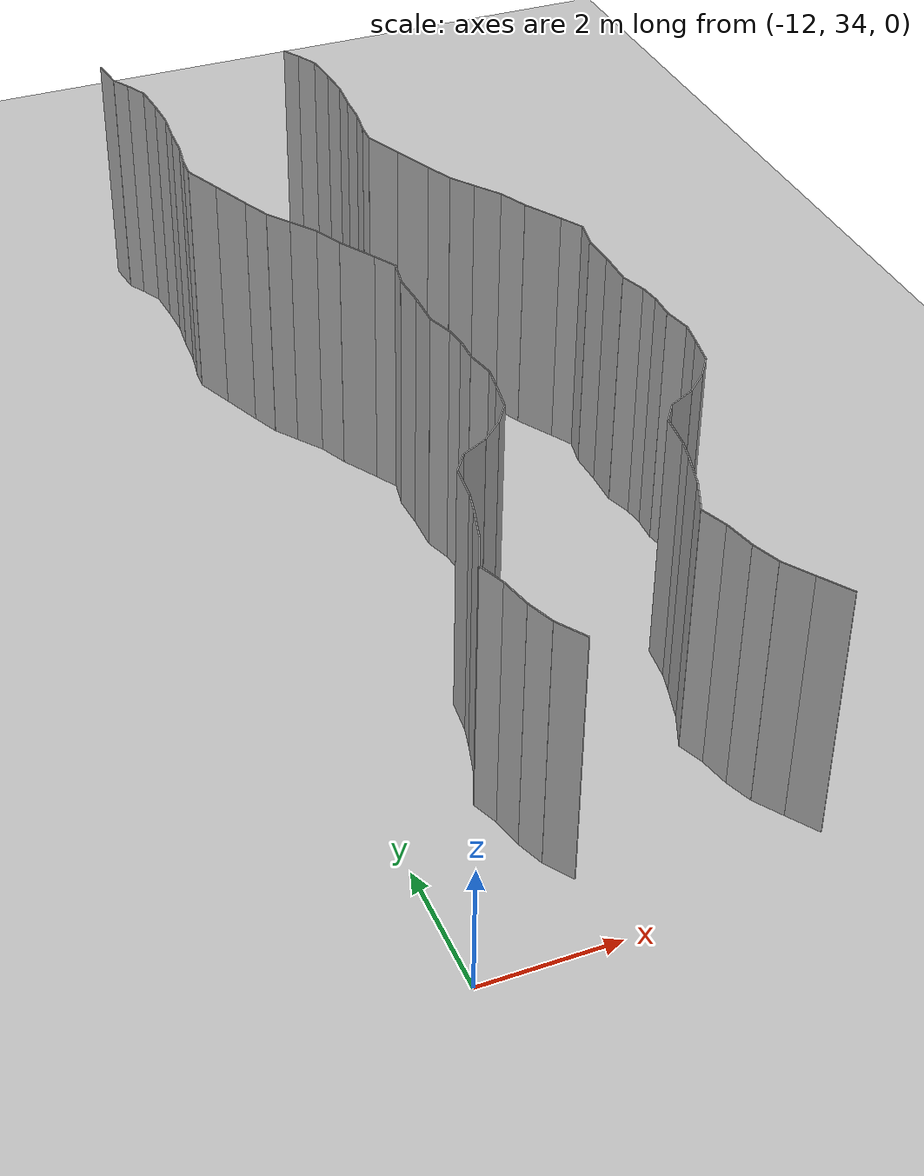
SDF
<sdf version="1.6">
 <world name="default">
  <model name="ground_plane">
   <static>1</static>
   <link name="link">
    <collision name="collision">
     <geometry><plane><normal>0 0 1</normal><size>200 200</size></plane></geometry>
     <surface><friction><ode><mu>100</mu><mu2>50</mu2></ode></friction></surface>
    </collision>
    <visual name="visual">
     <cast_shadows>0</cast_shadows>
     <geometry><plane><normal>0 0 1</normal><size>200 200</size></plane></geometry>
     <material>
      <script><uri>file://media/materials/scripts/gazebo.material</uri><name>Gazebo/Grey</name></script>
     </material>
    </visual>
   </link>
   <pose>0 100 0 0 -0 0</pose>
  </model>
  <model name="wall_149">
   <static>1</static>
   <pose>-6.973516552069897 34.92768637609638 2 0 0 0.5878529912945827</pose>
   <link name="link">
    <collision name="collision"><geometry><box><size>0.02 0.527644451236 4</size></box></geometry></collision>
    <visual name="visual">
     <material>
      <script><name>Gazebo/Grey</name><uri>file://media/materials/scripts/gazebo.material</uri></script>
     </material>
     <geometry><box><size>0.02 0.527644451236 4</size></box></geometry>
    </visual>
   </link>
  </model>
  <model name="wall_150">
   <static>1</static>
   <pose>-10.253642782421261 35.35142472108414 2 0 0 0.5801007630974817</pose>
   <link name="link">
    <collision name="collision"><geometry><box><size>0.02 0.488286177886 4</size></box></geometry></collision>
    <visual name="visual">
     <material>
      <script><name>Gazebo/Grey</name><uri>file://media/materials/scripts/gazebo.material</uri></script>
     </material>
     <geometry><box><size>0.02 0.488286177886 4</size></box></geometry>
    </visual>
   </link>
  </model>
  <model name="wall_151">
   <static>1</static>
   <pose>-7.253642782421261 35.35142472108414 2 0 0 0.5801007630974817</pose>
   <link name="link">
    <collision name="collision"><geometry><box><size>0.02 0.488286177886 4</size></box></geometry></collision>
    <visual name="visual">
     <material>
      <script><name>Gazebo/Grey</name><uri>file://media/materials/scripts/gazebo.material</uri></script>
     </material>
     <geometry><box><size>0.02 0.488286177886 4</size></box></geometry>
    </visual>
   </link>
  </model>
  <model name="wall_152">
   <static>1</static>
   <pose>-10.461663065087262 35.75795263473962 2 0 0 0.3515218257298845</pose>
   <link name="link">
    <collision name="collision"><geometry><box><size>0.02 0.431005731591 4</size></box></geometry></collision>
    <visual name="visual">
     <material>
      <script><name>Gazebo/Grey</name><uri>file://media/materials/scripts/gazebo.material</uri></script>
     </material>
     <geometry><box><size>0.02 0.431005731591 4</size></box></geometry>
    </visual>
   </link>
  </model>
  <model name="wall_153">
   <static>1</static>
   <pose>-7.4616630650872615 35.75795263473962 2 0 0 0.3515218257298845</pose>
   <link name="link">
    <collision name="collision"><geometry><box><size>0.02 0.431005731591 4</size></box></geometry></collision>
    <visual name="visual">
     <material>
      <script><name>Gazebo/Grey</name><uri>file://media/materials/scripts/gazebo.material</uri></script>
     </material>
     <geometry><box><size>0.02 0.431005731591 4</size></box></geometry>
    </visual>
   </link>
  </model>
  <model name="wall_154">
   <static>1</static>
   <pose>-10.586798113768605 36.19405716307982 2 0 0 0.21450962501201826</pose>
   <link name="link">
    <collision name="collision"><geometry><box><size>0.02 0.478526819593 4</size></box></geometry></collision>
    <visual name="visual">
     <material>
      <script><name>Gazebo/Grey</name><uri>file://media/materials/scripts/gazebo.material</uri></script>
     </material>
     <geometry><box><size>0.02 0.478526819593 4</size></box></geometry>
    </visual>
   </link>
  </model>
  <model name="wall_155">
   <static>1</static>
   <pose>-7.586798113768605 36.19405716307982 2 0 0 0.21450962501201826</pose>
   <link name="link">
    <collision name="collision"><geometry><box><size>0.02 0.478526819593 4</size></box></geometry></collision>
    <visual name="visual">
     <material>
      <script><name>Gazebo/Grey</name><uri>file://media/materials/scripts/gazebo.material</uri></script>
     </material>
     <geometry><box><size>0.02 0.478526819593 4</size></box></geometry>
    </visual>
   </link>
  </model>
  <model name="wall_156">
   <static>1</static>
   <pose>-10.712820320702308 36.62304796805498 2 0 0 0.3672158516020859</pose>
   <link name="link">
    <collision name="collision"><geometry><box><size>0.02 0.418310755604 4</size></box></geometry></collision>
    <visual name="visual">
     <material>
      <script><name>Gazebo/Grey</name><uri>file://media/materials/scripts/gazebo.material</uri></script>
     </material>
     <geometry><box><size>0.02 0.418310755604 4</size></box></geometry>
    </visual>
   </link>
  </model>
  <model name="wall_157">
   <static>1</static>
   <pose>-7.712820320702308 36.62304796805498 2 0 0 0.3672158516020859</pose>
   <link name="link">
    <collision name="collision"><geometry><box><size>0.02 0.418310755604 4</size></box></geometry></collision>
    <visual name="visual">
     <material>
      <script><name>Gazebo/Grey</name><uri>file://media/materials/scripts/gazebo.material</uri></script>
     </material>
     <geometry><box><size>0.02 0.418310755604 4</size></box></geometry>
    </visual>
   </link>
  </model>
  <model name="wall_158">
   <static>1</static>
   <pose>-10.67666074626445 37.078962351962005 2 0 0 -0.40333593144940244</pose>
   <link name="link">
    <collision name="collision"><geometry><box><size>0.02 0.566896132554 4</size></box></geometry></collision>
    <visual name="visual">
     <material>
      <script><name>Gazebo/Grey</name><uri>file://media/materials/scripts/gazebo.material</uri></script>
     </material>
     <geometry><box><size>0.02 0.566896132554 4</size></box></geometry>
    </visual>
   </link>
  </model>
  <model name="wall_159">
   <static>1</static>
   <pose>-7.676660746264449 37.078962351962005 2 0 0 -0.40333593144940244</pose>
   <link name="link">
    <collision name="collision"><geometry><box><size>0.02 0.566896132554 4</size></box></geometry></collision>
    <visual name="visual">
     <material>
      <script><name>Gazebo/Grey</name><uri>file://media/materials/scripts/gazebo.material</uri></script>
     </material>
     <geometry><box><size>0.02 0.566896132554 4</size></box></geometry>
    </visual>
   </link>
  </model>
  <model name="wall_160">
   <static>1</static>
   <pose>-10.491217744832854 37.60129481774817 2 0 0 -0.2763254004838807</pose>
   <link name="link">
    <collision name="collision"><geometry><box><size>0.02 0.543891173695 4</size></box></geometry></collision>
    <visual name="visual">
     <material>
      <script><name>Gazebo/Grey</name><uri>file://media/materials/scripts/gazebo.material</uri></script>
     </material>
     <geometry><box><size>0.02 0.543891173695 4</size></box></geometry>
    </visual>
   </link>
  </model>
  <model name="wall_161">
   <static>1</static>
   <pose>-7.491217744832854 37.60129481774817 2 0 0 -0.2763254004838807</pose>
   <link name="link">
    <collision name="collision"><geometry><box><size>0.02 0.543891173695 4</size></box></geometry></collision>
    <visual name="visual">
     <material>
      <script><name>Gazebo/Grey</name><uri>file://media/materials/scripts/gazebo.material</uri></script>
     </material>
     <geometry><box><size>0.02 0.543891173695 4</size></box></geometry>
    </visual>
   </link>
  </model>
  <model name="wall_162">
   <static>1</static>
   <pose>-10.379246231117214 38.01761766473765 2 0 0 -0.23952768896015864</pose>
   <link name="link">
    <collision name="collision"><geometry><box><size>0.02 0.318479891964 4</size></box></geometry></collision>
    <visual name="visual">
     <material>
      <script><name>Gazebo/Grey</name><uri>file://media/materials/scripts/gazebo.material</uri></script>
     </material>
     <geometry><box><size>0.02 0.318479891964 4</size></box></geometry>
    </visual>
   </link>
  </model>
  <model name="wall_163">
   <static>1</static>
   <pose>-7.3792462311172144 38.01761766473765 2 0 0 -0.23952768896015864</pose>
   <link name="link">
    <collision name="collision"><geometry><box><size>0.02 0.318479891964 4</size></box></geometry></collision>
    <visual name="visual">
     <material>
      <script><name>Gazebo/Grey</name><uri>file://media/materials/scripts/gazebo.material</uri></script>
     </material>
     <geometry><box><size>0.02 0.318479891964 4</size></box></geometry>
    </visual>
   </link>
  </model>
  <model name="wall_164">
   <static>1</static>
   <pose>-10.314433425523095 38.43618425653294 2 0 0 -0.10209504109401685</pose>
   <link name="link">
    <collision name="collision"><geometry><box><size>0.02 0.530508297854 4</size></box></geometry></collision>
    <visual name="visual">
     <material>
      <script><name>Gazebo/Grey</name><uri>file://media/materials/scripts/gazebo.material</uri></script>
     </material>
     <geometry><box><size>0.02 0.530508297854 4</size></box></geometry>
    </visual>
   </link>
  </model>
  <model name="wall_165">
   <static>1</static>
   <pose>-7.314433425523095 38.43618425653294 2 0 0 -0.10209504109401685</pose>
   <link name="link">
    <collision name="collision"><geometry><box><size>0.02 0.530508297854 4</size></box></geometry></collision>
    <visual name="visual">
     <material>
      <script><name>Gazebo/Grey</name><uri>file://media/materials/scripts/gazebo.material</uri></script>
     </material>
     <geometry><box><size>0.02 0.530508297854 4</size></box></geometry>
    </visual>
   </link>
  </model>
  <model name="wall_166">
   <static>1</static>
   <pose>-10.183954145807355 38.84725883644627 2 0 0 -0.6125656028762286</pose>
   <link name="link">
    <collision name="collision"><geometry><box><size>0.02 0.35982901579 4</size></box></geometry></collision>
    <visual name="visual">
     <material>
      <script><name>Gazebo/Grey</name><uri>file://media/materials/scripts/gazebo.material</uri></script>
     </material>
     <geometry><box><size>0.02 0.35982901579 4</size></box></geometry>
    </visual>
   </link>
  </model>
  <model name="wall_167">
   <static>1</static>
   <pose>-7.1839541458073555 38.84725883644627 2 0 0 -0.6125656028762286</pose>
   <link name="link">
    <collision name="collision"><geometry><box><size>0.02 0.35982901579 4</size></box></geometry></collision>
    <visual name="visual">
     <material>
      <script><name>Gazebo/Grey</name><uri>file://media/materials/scripts/gazebo.material</uri></script>
     </material>
     <geometry><box><size>0.02 0.35982901579 4</size></box></geometry>
    </visual>
   </link>
  </model>
  <model name="wall_168">
   <static>1</static>
   <pose>-9.884649813034999 39.09232711958715 2 0 0 -1.1074058925830867</pose>
   <link name="link">
    <collision name="collision"><geometry><box><size>0.02 0.437898112297 4</size></box></geometry></collision>
    <visual name="visual">
     <material>
      <script><name>Gazebo/Grey</name><uri>file://media/materials/scripts/gazebo.material</uri></script>
     </material>
     <geometry><box><size>0.02 0.437898112297 4</size></box></geometry>
    </visual>
   </link>
  </model>
  <model name="wall_169">
   <static>1</static>
   <pose>-6.884649813034999 39.09232711958715 2 0 0 -1.1074058925830867</pose>
   <link name="link">
    <collision name="collision"><geometry><box><size>0.02 0.437898112297 4</size></box></geometry></collision>
    <visual name="visual">
     <material>
      <script><name>Gazebo/Grey</name><uri>file://media/materials/scripts/gazebo.material</uri></script>
     </material>
     <geometry><box><size>0.02 0.437898112297 4</size></box></geometry>
    </visual>
   </link>
  </model>
  <model name="wall_170">
   <static>1</static>
   <pose>-9.532824115158853 39.333615893489934 2 0 0 -0.8272736744001842</pose>
   <link name="link">
    <collision name="collision"><geometry><box><size>0.02 0.423771030139 4</size></box></geometry></collision>
    <visual name="visual">
     <material>
      <script><name>Gazebo/Grey</name><uri>file://media/materials/scripts/gazebo.material</uri></script>
     </material>
     <geometry><box><size>0.02 0.423771030139 4</size></box></geometry>
    </visual>
   </link>
  </model>
  <model name="wall_171">
   <static>1</static>
   <pose>-6.532824115158853 39.333615893489934 2 0 0 -0.8272736744001842</pose>
   <link name="link">
    <collision name="collision"><geometry><box><size>0.02 0.423771030139 4</size></box></geometry></collision>
    <visual name="visual">
     <material>
      <script><name>Gazebo/Grey</name><uri>file://media/materials/scripts/gazebo.material</uri></script>
     </material>
     <geometry><box><size>0.02 0.423771030139 4</size></box></geometry>
    </visual>
   </link>
  </model>
  <model name="wall_172">
   <static>1</static>
   <pose>-9.261114124329769 39.6416728451849 2 0 0 -0.6127576447596543</pose>
   <link name="link">
    <collision name="collision"><geometry><box><size>0.02 0.402498035678 4</size></box></geometry></collision>
    <visual name="visual">
     <material>
      <script><name>Gazebo/Grey</name><uri>file://media/materials/scripts/gazebo.material</uri></script>
     </material>
     <geometry><box><size>0.02 0.402498035678 4</size></box></geometry>
    </visual>
   </link>
  </model>
  <model name="wall_173">
   <static>1</static>
   <pose>-6.261114124329769 39.6416728451849 2 0 0 -0.6127576447596543</pose>
   <link name="link">
    <collision name="collision"><geometry><box><size>0.02 0.402498035678 4</size></box></geometry></collision>
    <visual name="visual">
     <material>
      <script><name>Gazebo/Grey</name><uri>file://media/materials/scripts/gazebo.material</uri></script>
     </material>
     <geometry><box><size>0.02 0.402498035678 4</size></box></geometry>
    </visual>
   </link>
  </model>
  <model name="wall_174">
   <static>1</static>
   <pose>-9.106679390160627 40.02811147614148 2 0 0 -0.1727014560894286</pose>
   <link name="link">
    <collision name="collision"><geometry><box><size>0.02 0.450306348265 4</size></box></geometry></collision>
    <visual name="visual">
     <material>
      <script><name>Gazebo/Grey</name><uri>file://media/materials/scripts/gazebo.material</uri></script>
     </material>
     <geometry><box><size>0.02 0.450306348265 4</size></box></geometry>
    </visual>
   </link>
  </model>
  <model name="wall_175">
   <static>1</static>
   <pose>-6.106679390160627 40.02811147614148 2 0 0 -0.1727014560894286</pose>
   <link name="link">
    <collision name="collision"><geometry><box><size>0.02 0.450306348265 4</size></box></geometry></collision>
    <visual name="visual">
     <material>
      <script><name>Gazebo/Grey</name><uri>file://media/materials/scripts/gazebo.material</uri></script>
     </material>
     <geometry><box><size>0.02 0.450306348265 4</size></box></geometry>
    </visual>
   </link>
  </model>
  <model name="wall_176">
   <static>1</static>
   <pose>-9.03948695620688 40.43361459537852 2 0 0 -0.15392390376779727</pose>
   <link name="link">
    <collision name="collision"><geometry><box><size>0.02 0.371794279395 4</size></box></geometry></collision>
    <visual name="visual">
     <material>
      <script><name>Gazebo/Grey</name><uri>file://media/materials/scripts/gazebo.material</uri></script>
     </material>
     <geometry><box><size>0.02 0.371794279395 4</size></box></geometry>
    </visual>
   </link>
  </model>
  <model name="wall_177">
   <static>1</static>
   <pose>-6.039486956206879 40.43361459537852 2 0 0 -0.15392390376779727</pose>
   <link name="link">
    <collision name="collision"><geometry><box><size>0.02 0.371794279395 4</size></box></geometry></collision>
    <visual name="visual">
     <material>
      <script><name>Gazebo/Grey</name><uri>file://media/materials/scripts/gazebo.material</uri></script>
     </material>
     <geometry><box><size>0.02 0.371794279395 4</size></box></geometry>
    </visual>
   </link>
  </model>
  <model name="wall_178">
   <static>1</static>
   <pose>-9.054822630717934 40.832484646258166 2 0 0 0.20097992937342501</pose>
   <link name="link">
    <collision name="collision"><geometry><box><size>0.02 0.439181613833 4</size></box></geometry></collision>
    <visual name="visual">
     <material>
      <script><name>Gazebo/Grey</name><uri>file://media/materials/scripts/gazebo.material</uri></script>
     </material>
     <geometry><box><size>0.02 0.439181613833 4</size></box></geometry>
    </visual>
   </link>
  </model>
  <model name="wall_179">
   <static>1</static>
   <pose>-6.0548226307179345 40.832484646258166 2 0 0 0.20097992937342501</pose>
   <link name="link">
    <collision name="collision"><geometry><box><size>0.02 0.439181613833 4</size></box></geometry></collision>
    <visual name="visual">
     <material>
      <script><name>Gazebo/Grey</name><uri>file://media/materials/scripts/gazebo.material</uri></script>
     </material>
     <geometry><box><size>0.02 0.439181613833 4</size></box></geometry>
    </visual>
   </link>
  </model>
  <model name="wall_180">
   <static>1</static>
   <pose>-9.092775992512946 41.24075153438704 2 0 0 -0.03045970070351771</pose>
   <link name="link">
    <collision name="collision"><geometry><box><size>0.02 0.386371484895 4</size></box></geometry></collision>
    <visual name="visual">
     <material>
      <script><name>Gazebo/Grey</name><uri>file://media/materials/scripts/gazebo.material</uri></script>
     </material>
     <geometry><box><size>0.02 0.386371484895 4</size></box></geometry>
    </visual>
   </link>
  </model>
  <model name="wall_181">
   <static>1</static>
   <pose>-6.092775992512946 41.24075153438704 2 0 0 -0.03045970070351771</pose>
   <link name="link">
    <collision name="collision"><geometry><box><size>0.02 0.386371484895 4</size></box></geometry></collision>
    <visual name="visual">
     <material>
      <script><name>Gazebo/Grey</name><uri>file://media/materials/scripts/gazebo.material</uri></script>
     </material>
     <geometry><box><size>0.02 0.386371484895 4</size></box></geometry>
    </visual>
   </link>
  </model>
  <model name="wall_182">
   <static>1</static>
   <pose>-9.106173967271706 41.58609570773712 2 0 0 0.12597430248278776</pose>
   <link name="link">
    <collision name="collision"><geometry><box><size>0.02 0.306928268273 4</size></box></geometry></collision>
    <visual name="visual">
     <material>
      <script><name>Gazebo/Grey</name><uri>file://media/materials/scripts/gazebo.material</uri></script>
     </material>
     <geometry><box><size>0.02 0.306928268273 4</size></box></geometry>
    </visual>
   </link>
  </model>
  <model name="wall_183">
   <static>1</static>
   <pose>-6.106173967271706 41.58609570773712 2 0 0 0.12597430248278776</pose>
   <link name="link">
    <collision name="collision"><geometry><box><size>0.02 0.306928268273 4</size></box></geometry></collision>
    <visual name="visual">
     <material>
      <script><name>Gazebo/Grey</name><uri>file://media/materials/scripts/gazebo.material</uri></script>
     </material>
     <geometry><box><size>0.02 0.306928268273 4</size></box></geometry>
    </visual>
   </link>
  </model>
  <model name="wall_184">
   <static>1</static>
   <pose>-9.190645138829026 41.93658875600134 2 0 0 0.3176958328646695</pose>
   <link name="link">
    <collision name="collision"><geometry><box><size>0.02 0.417376486673 4</size></box></geometry></collision>
    <visual name="visual">
     <material>
      <script><name>Gazebo/Grey</name><uri>file://media/materials/scripts/gazebo.material</uri></script>
     </material>
     <geometry><box><size>0.02 0.417376486673 4</size></box></geometry>
    </visual>
   </link>
  </model>
  <model name="wall_185">
   <static>1</static>
   <pose>-6.1906451388290265 41.93658875600134 2 0 0 0.3176958328646695</pose>
   <link name="link">
    <collision name="collision"><geometry><box><size>0.02 0.417376486673 4</size></box></geometry></collision>
    <visual name="visual">
     <material>
      <script><name>Gazebo/Grey</name><uri>file://media/materials/scripts/gazebo.material</uri></script>
     </material>
     <geometry><box><size>0.02 0.417376486673 4</size></box></geometry>
    </visual>
   </link>
  </model>
  <model name="wall_186">
   <static>1</static>
   <pose>-9.251547409349742 42.41596974109199 2 0 0 -0.015249289431989738</pose>
   <link name="link">
    <collision name="collision"><geometry><box><size>0.02 0.562337339979 4</size></box></geometry></collision>
    <visual name="visual">
     <material>
      <script><name>Gazebo/Grey</name><uri>file://media/materials/scripts/gazebo.material</uri></script>
     </material>
     <geometry><box><size>0.02 0.562337339979 4</size></box></geometry>
    </visual>
   </link>
  </model>
  <model name="wall_187">
   <static>1</static>
   <pose>-6.251547409349742 42.41596974109199 2 0 0 -0.015249289431989738</pose>
   <link name="link">
    <collision name="collision"><geometry><box><size>0.02 0.562337339979 4</size></box></geometry></collision>
    <visual name="visual">
     <material>
      <script><name>Gazebo/Grey</name><uri>file://media/materials/scripts/gazebo.material</uri></script>
     </material>
     <geometry><box><size>0.02 0.562337339979 4</size></box></geometry>
    </visual>
   </link>
  </model>
  <model name="wall_188">
   <static>1</static>
   <pose>-9.258158376950432 42.95766701404447 2 0 0 0.04180235233850445</pose>
   <link name="link">
    <collision name="collision"><geometry><box><size>0.02 0.521578233961 4</size></box></geometry></collision>
    <visual name="visual">
     <material>
      <script><name>Gazebo/Grey</name><uri>file://media/materials/scripts/gazebo.material</uri></script>
     </material>
     <geometry><box><size>0.02 0.521578233961 4</size></box></geometry>
    </visual>
   </link>
  </model>
  <model name="wall_189">
   <static>1</static>
   <pose>-6.258158376950432 42.95766701404447 2 0 0 0.04180235233850445</pose>
   <link name="link">
    <collision name="collision"><geometry><box><size>0.02 0.521578233961 4</size></box></geometry></collision>
    <visual name="visual">
     <material>
      <script><name>Gazebo/Grey</name><uri>file://media/materials/scripts/gazebo.material</uri></script>
     </material>
     <geometry><box><size>0.02 0.521578233961 4</size></box></geometry>
    </visual>
   </link>
  </model>
  <model name="wall_190">
   <static>1</static>
   <pose>-9.225694556850925 43.43951931406316 2 0 0 -0.193499494146746</pose>
   <link name="link">
    <collision name="collision"><geometry><box><size>0.02 0.450998862872 4</size></box></geometry></collision>
    <visual name="visual">
     <material>
      <script><name>Gazebo/Grey</name><uri>file://media/materials/scripts/gazebo.material</uri></script>
     </material>
     <geometry><box><size>0.02 0.450998862872 4</size></box></geometry>
    </visual>
   </link>
  </model>
  <model name="wall_191">
   <static>1</static>
   <pose>-6.225694556850925 43.43951931406316 2 0 0 -0.193499494146746</pose>
   <link name="link">
    <collision name="collision"><geometry><box><size>0.02 0.450998862872 4</size></box></geometry></collision>
    <visual name="visual">
     <material>
      <script><name>Gazebo/Grey</name><uri>file://media/materials/scripts/gazebo.material</uri></script>
     </material>
     <geometry><box><size>0.02 0.450998862872 4</size></box></geometry>
    </visual>
   </link>
  </model>
  <model name="wall_192">
   <static>1</static>
   <pose>-9.27829825740903 43.82965617589893 2 0 0 0.5168330217991549</pose>
   <link name="link">
    <collision name="collision"><geometry><box><size>0.02 0.388424435422 4</size></box></geometry></collision>
    <visual name="visual">
     <material>
      <script><name>Gazebo/Grey</name><uri>file://media/materials/scripts/gazebo.material</uri></script>
     </material>
     <geometry><box><size>0.02 0.388424435422 4</size></box></geometry>
    </visual>
   </link>
  </model>
  <model name="wall_193">
   <static>1</static>
   <pose>-6.2782982574090305 43.82965617589893 2 0 0 0.5168330217991549</pose>
   <link name="link">
    <collision name="collision"><geometry><box><size>0.02 0.388424435422 4</size></box></geometry></collision>
    <visual name="visual">
     <material>
      <script><name>Gazebo/Grey</name><uri>file://media/materials/scripts/gazebo.material</uri></script>
     </material>
     <geometry><box><size>0.02 0.388424435422 4</size></box></geometry>
    </visual>
   </link>
  </model>
  <model name="wall_194">
   <static>1</static>
   <pose>-9.543032065363189 44.281690926586435 2 0 0 0.5374399937315872</pose>
   <link name="link">
    <collision name="collision"><geometry><box><size>0.02 0.659328573473 4</size></box></geometry></collision>
    <visual name="visual">
     <material>
      <script><name>Gazebo/Grey</name><uri>file://media/materials/scripts/gazebo.material</uri></script>
     </material>
     <geometry><box><size>0.02 0.659328573473 4</size></box></geometry>
    </visual>
   </link>
  </model>
  <model name="wall_195">
   <static>1</static>
   <pose>-6.543032065363189 44.281690926586435 2 0 0 0.5374399937315872</pose>
   <link name="link">
    <collision name="collision"><geometry><box><size>0.02 0.659328573473 4</size></box></geometry></collision>
    <visual name="visual">
     <material>
      <script><name>Gazebo/Grey</name><uri>file://media/materials/scripts/gazebo.material</uri></script>
     </material>
     <geometry><box><size>0.02 0.659328573473 4</size></box></geometry>
    </visual>
   </link>
  </model>
  <model name="wall_196">
   <static>1</static>
   <pose>-9.811200377983411 44.78788655888731 2 0 0 0.4192960360130313</pose>
   <link name="link">
    <collision name="collision"><geometry><box><size>0.02 0.488313236371 4</size></box></geometry></collision>
    <visual name="visual">
     <material>
      <script><name>Gazebo/Grey</name><uri>file://media/materials/scripts/gazebo.material</uri></script>
     </material>
     <geometry><box><size>0.02 0.488313236371 4</size></box></geometry>
    </visual>
   </link>
  </model>
  <model name="wall_197">
   <static>1</static>
   <pose>-6.811200377983411 44.78788655888731 2 0 0 0.4192960360130313</pose>
   <link name="link">
    <collision name="collision"><geometry><box><size>0.02 0.488313236371 4</size></box></geometry></collision>
    <visual name="visual">
     <material>
      <script><name>Gazebo/Grey</name><uri>file://media/materials/scripts/gazebo.material</uri></script>
     </material>
     <geometry><box><size>0.02 0.488313236371 4</size></box></geometry>
    </visual>
   </link>
  </model>
  <model name="wall_198">
   <static>1</static>
   <pose>-10.050984239787768 45.207425747792925 2 0 0 0.6202598971165804</pose>
   <link name="link">
    <collision name="collision"><geometry><box><size>0.02 0.483042470397 4</size></box></geometry></collision>
    <visual name="visual">
     <material>
      <script><name>Gazebo/Grey</name><uri>file://media/materials/scripts/gazebo.material</uri></script>
     </material>
     <geometry><box><size>0.02 0.483042470397 4</size></box></geometry>
    </visual>
   </link>
  </model>
  <model name="wall_199">
   <static>1</static>
   <pose>-7.050984239787768 45.207425747792925 2 0 0 0.6202598971165804</pose>
   <link name="link">
    <collision name="collision"><geometry><box><size>0.02 0.483042470397 4</size></box></geometry></collision>
    <visual name="visual">
     <material>
      <script><name>Gazebo/Grey</name><uri>file://media/materials/scripts/gazebo.material</uri></script>
     </material>
     <geometry><box><size>0.02 0.483042470397 4</size></box></geometry>
    </visual>
   </link>
  </model>
  <model name="wall_200">
   <static>1</static>
   <pose>-10.31724699358342 45.58387581765195 2 0 0 0.610490950012113</pose>
   <link name="link">
    <collision name="collision"><geometry><box><size>0.02 0.439162648285 4</size></box></geometry></collision>
    <visual name="visual">
     <material>
      <script><name>Gazebo/Grey</name><uri>file://media/materials/scripts/gazebo.material</uri></script>
     </material>
     <geometry><box><size>0.02 0.439162648285 4</size></box></geometry>
    </visual>
   </link>
  </model>
  <model name="wall_201">
   <static>1</static>
   <pose>-7.317246993583421 45.58387581765195 2 0 0 0.610490950012113</pose>
   <link name="link">
    <collision name="collision"><geometry><box><size>0.02 0.439162648285 4</size></box></geometry></collision>
    <visual name="visual">
     <material>
      <script><name>Gazebo/Grey</name><uri>file://media/materials/scripts/gazebo.material</uri></script>
     </material>
     <geometry><box><size>0.02 0.439162648285 4</size></box></geometry>
    </visual>
   </link>
  </model>
  <model name="wall_202">
   <static>1</static>
   <pose>-10.537683646239596 45.981670226715075 2 0 0 0.4094642692564279</pose>
   <link name="link">
    <collision name="collision"><geometry><box><size>0.02 0.475021604157 4</size></box></geometry></collision>
    <visual name="visual">
     <material>
      <script><name>Gazebo/Grey</name><uri>file://media/materials/scripts/gazebo.material</uri></script>
     </material>
     <geometry><box><size>0.02 0.475021604157 4</size></box></geometry>
    </visual>
   </link>
  </model>
  <model name="wall_203">
   <static>1</static>
   <pose>-7.537683646239596 45.981670226715075 2 0 0 0.4094642692564279</pose>
   <link name="link">
    <collision name="collision"><geometry><box><size>0.02 0.475021604157 4</size></box></geometry></collision>
    <visual name="visual">
     <material>
      <script><name>Gazebo/Grey</name><uri>file://media/materials/scripts/gazebo.material</uri></script>
     </material>
     <geometry><box><size>0.02 0.475021604157 4</size></box></geometry>
    </visual>
   </link>
  </model>
  <model name="wall_204">
   <static>1</static>
   <pose>-10.76249880690735 46.52091030751518 2 0 0 0.3850918526041111</pose>
   <link name="link">
    <collision name="collision"><geometry><box><size>0.02 0.693517040783 4</size></box></geometry></collision>
    <visual name="visual">
     <material>
      <script><name>Gazebo/Grey</name><uri>file://media/materials/scripts/gazebo.material</uri></script>
     </material>
     <geometry><box><size>0.02 0.693517040783 4</size></box></geometry>
    </visual>
   </link>
  </model>
  <model name="wall_205">
   <static>1</static>
   <pose>-7.762498806907351 46.52091030751518 2 0 0 0.3850918526041111</pose>
   <link name="link">
    <collision name="collision"><geometry><box><size>0.02 0.693517040783 4</size></box></geometry></collision>
    <visual name="visual">
     <material>
      <script><name>Gazebo/Grey</name><uri>file://media/materials/scripts/gazebo.material</uri></script>
     </material>
     <geometry><box><size>0.02 0.693517040783 4</size></box></geometry>
    </visual>
   </link>
  </model>
  <model name="wall_206">
   <static>1</static>
   <pose>-11.018607113250466 47.147378113070666 2 0 0 0.3912211387101897</pose>
   <link name="link">
    <collision name="collision"><geometry><box><size>0.02 0.660082125044 4</size></box></geometry></collision>
    <visual name="visual">
     <material>
      <script><name>Gazebo/Grey</name><uri>file://media/materials/scripts/gazebo.material</uri></script>
     </material>
     <geometry><box><size>0.02 0.660082125044 4</size></box></geometry>
    </visual>
   </link>
  </model>
  <model name="wall_207">
   <static>1</static>
   <pose>-8.018607113250466 47.147378113070666 2 0 0 0.3912211387101897</pose>
   <link name="link">
    <collision name="collision"><geometry><box><size>0.02 0.660082125044 4</size></box></geometry></collision>
    <visual name="visual">
     <material>
      <script><name>Gazebo/Grey</name><uri>file://media/materials/scripts/gazebo.material</uri></script>
     </material>
     <geometry><box><size>0.02 0.660082125044 4</size></box></geometry>
    </visual>
   </link>
  </model>
  <model name="wall_208">
   <static>1</static>
   <pose>-11.136179378356548 47.61249921114742 2 0 0 -0.051687260640206324</pose>
   <link name="link">
    <collision name="collision"><geometry><box><size>0.02 0.320461137493 4</size></box></geometry></collision>
    <visual name="visual">
     <material>
      <script><name>Gazebo/Grey</name><uri>file://media/materials/scripts/gazebo.material</uri></script>
     </material>
     <geometry><box><size>0.02 0.320461137493 4</size></box></geometry>
    </visual>
   </link>
  </model>
  <model name="wall_209">
   <static>1</static>
   <pose>-8.136179378356548 47.61249921114742 2 0 0 -0.051687260640206324</pose>
   <link name="link">
    <collision name="collision"><geometry><box><size>0.02 0.320461137493 4</size></box></geometry></collision>
    <visual name="visual">
     <material>
      <script><name>Gazebo/Grey</name><uri>file://media/materials/scripts/gazebo.material</uri></script>
     </material>
     <geometry><box><size>0.02 0.320461137493 4</size></box></geometry>
    </visual>
   </link>
  </model>
  <model name="wall_210">
   <static>1</static>
   <pose>-11.091688151402609 47.99980932940424 2 0 0 -0.15799486337405716</pose>
   <link name="link">
    <collision name="collision"><geometry><box><size>0.02 0.46032047646 4</size></box></geometry></collision>
    <visual name="visual">
     <material>
      <script><name>Gazebo/Grey</name><uri>file://media/materials/scripts/gazebo.material</uri></script>
     </material>
     <geometry><box><size>0.02 0.46032047646 4</size></box></geometry>
    </visual>
   </link>
  </model>
  <model name="wall_211">
   <static>1</static>
   <pose>-8.091688151402609 47.99980932940424 2 0 0 -0.15799486337405716</pose>
   <link name="link">
    <collision name="collision"><geometry><box><size>0.02 0.46032047646 4</size></box></geometry></collision>
    <visual name="visual">
     <material>
      <script><name>Gazebo/Grey</name><uri>file://media/materials/scripts/gazebo.material</uri></script>
     </material>
     <geometry><box><size>0.02 0.46032047646 4</size></box></geometry>
    </visual>
   </link>
  </model>
  <model name="wall_212">
   <static>1</static>
   <pose>-11.044958524727065 48.46709135986099 2 0 0 -0.04379321541925989</pose>
   <link name="link">
    <collision name="collision"><geometry><box><size>0.02 0.480437618527 4</size></box></geometry></collision>
    <visual name="visual">
     <material>
      <script><name>Gazebo/Grey</name><uri>file://media/materials/scripts/gazebo.material</uri></script>
     </material>
     <geometry><box><size>0.02 0.480437618527 4</size></box></geometry>
    </visual>
   </link>
  </model>
  <model name="wall_213">
   <static>1</static>
   <pose>-8.044958524727065 48.46709135986099 2 0 0 -0.04379321541925989</pose>
   <link name="link">
    <collision name="collision"><geometry><box><size>0.02 0.480437618527 4</size></box></geometry></collision>
    <visual name="visual">
     <material>
      <script><name>Gazebo/Grey</name><uri>file://media/materials/scripts/gazebo.material</uri></script>
     </material>
     <geometry><box><size>0.02 0.480437618527 4</size></box></geometry>
    </visual>
   </link>
  </model>
  <model name="wall_214">
   <static>1</static>
   <pose>-11.008626294392496 48.967265075709115 2 0 0 -0.09889654764077746</pose>
   <link name="link">
    <collision name="collision"><geometry><box><size>0.02 0.522925602595 4</size></box></geometry></collision>
    <visual name="visual">
     <material>
      <script><name>Gazebo/Grey</name><uri>file://media/materials/scripts/gazebo.material</uri></script>
     </material>
     <geometry><box><size>0.02 0.522925602595 4</size></box></geometry>
    </visual>
   </link>
  </model>
  <model name="wall_215">
   <static>1</static>
   <pose>-8.008626294392496 48.967265075709115 2 0 0 -0.09889654764077746</pose>
   <link name="link">
    <collision name="collision"><geometry><box><size>0.02 0.522925602595 4</size></box></geometry></collision>
    <visual name="visual">
     <material>
      <script><name>Gazebo/Grey</name><uri>file://media/materials/scripts/gazebo.material</uri></script>
     </material>
     <geometry><box><size>0.02 0.522925602595 4</size></box></geometry>
    </visual>
   </link>
  </model>
  <model name="wall_216">
   <static>1</static>
   <pose>-10.992617910492418 49.485394127100015 2 0 0 0.038002587580451296</pose>
   <link name="link">
    <collision name="collision"><geometry><box><size>0.02 0.516260406538 4</size></box></geometry></collision>
    <visual name="visual">
     <material>
      <script><name>Gazebo/Grey</name><uri>file://media/materials/scripts/gazebo.material</uri></script>
     </material>
     <geometry><box><size>0.02 0.516260406538 4</size></box></geometry>
    </visual>
   </link>
  </model>
  <model name="wall_217">
   <static>1</static>
   <pose>-7.992617910492418 49.485394127100015 2 0 0 0.038002587580451296</pose>
   <link name="link">
    <collision name="collision"><geometry><box><size>0.02 0.516260406538 4</size></box></geometry></collision>
    <visual name="visual">
     <material>
      <script><name>Gazebo/Grey</name><uri>file://media/materials/scripts/gazebo.material</uri></script>
     </material>
     <geometry><box><size>0.02 0.516260406538 4</size></box></geometry>
    </visual>
   </link>
  </model>
  <model name="wall_218">
   <static>1</static>
   <pose>-11.022996085663781 50.012663009556945 2 0 0 0.07623151784451077</pose>
   <link name="link">
    <collision name="collision"><geometry><box><size>0.02 0.540219016636 4</size></box></geometry></collision>
    <visual name="visual">
     <material>
      <script><name>Gazebo/Grey</name><uri>file://media/materials/scripts/gazebo.material</uri></script>
     </material>
     <geometry><box><size>0.02 0.540219016636 4</size></box></geometry>
    </visual>
   </link>
  </model>
  <model name="wall_219">
   <static>1</static>
   <pose>-8.022996085663781 50.012663009556945 2 0 0 0.07623151784451077</pose>
   <link name="link">
    <collision name="collision"><geometry><box><size>0.02 0.540219016636 4</size></box></geometry></collision>
    <visual name="visual">
     <material>
      <script><name>Gazebo/Grey</name><uri>file://media/materials/scripts/gazebo.material</uri></script>
     </material>
     <geometry><box><size>0.02 0.540219016636 4</size></box></geometry>
    </visual>
   </link>
  </model>
  <model name="wall_220">
   <static>1</static>
   <pose>-11.128280714961463 50.45649123650192 2 0 0 0.45194530141324357</pose>
   <link name="link">
    <collision name="collision"><geometry><box><size>0.02 0.38795757743 4</size></box></geometry></collision>
    <visual name="visual">
     <material>
      <script><name>Gazebo/Grey</name><uri>file://media/materials/scripts/gazebo.material</uri></script>
     </material>
     <geometry><box><size>0.02 0.38795757743 4</size></box></geometry>
    </visual>
   </link>
  </model>
  <model name="wall_221">
   <static>1</static>
   <pose>-8.128280714961463 50.45649123650192 2 0 0 0.45194530141324357</pose>
   <link name="link">
    <collision name="collision"><geometry><box><size>0.02 0.38795757743 4</size></box></geometry></collision>
    <visual name="visual">
     <material>
      <script><name>Gazebo/Grey</name><uri>file://media/materials/scripts/gazebo.material</uri></script>
     </material>
     <geometry><box><size>0.02 0.38795757743 4</size></box></geometry>
    </visual>
   </link>
  </model>
  <model name="wall_222">
   <static>1</static>
   <pose>-11.293637863849334 50.76829821060671 2 0 0 0.5310555607126002</pose>
   <link name="link">
    <collision name="collision"><geometry><box><size>0.02 0.318469450562 4</size></box></geometry></collision>
    <visual name="visual">
     <material>
      <script><name>Gazebo/Grey</name><uri>file://media/materials/scripts/gazebo.material</uri></script>
     </material>
     <geometry><box><size>0.02 0.318469450562 4</size></box></geometry>
    </visual>
   </link>
  </model>
  <model name="wall_223">
   <static>1</static>
   <pose>-8.293637863849334 50.76829821060671 2 0 0 0.5310555607126002</pose>
   <link name="link">
    <collision name="collision"><geometry><box><size>0.02 0.318469450562 4</size></box></geometry></collision>
    <visual name="visual">
     <material>
      <script><name>Gazebo/Grey</name><uri>file://media/materials/scripts/gazebo.material</uri></script>
     </material>
     <geometry><box><size>0.02 0.318469450562 4</size></box></geometry>
    </visual>
   </link>
  </model>
  <model name="wall_224">
   <static>1</static>
   <pose>-11.4091324726453 51.185983408553675 2 0 0 0.12366486450464076</pose>
   <link name="link">
    <collision name="collision"><geometry><box><size>0.02 0.565078163314 4</size></box></geometry></collision>
    <visual name="visual">
     <material>
      <script><name>Gazebo/Grey</name><uri>file://media/materials/scripts/gazebo.material</uri></script>
     </material>
     <geometry><box><size>0.02 0.565078163314 4</size></box></geometry>
    </visual>
   </link>
  </model>
 </world>
</sdf>
